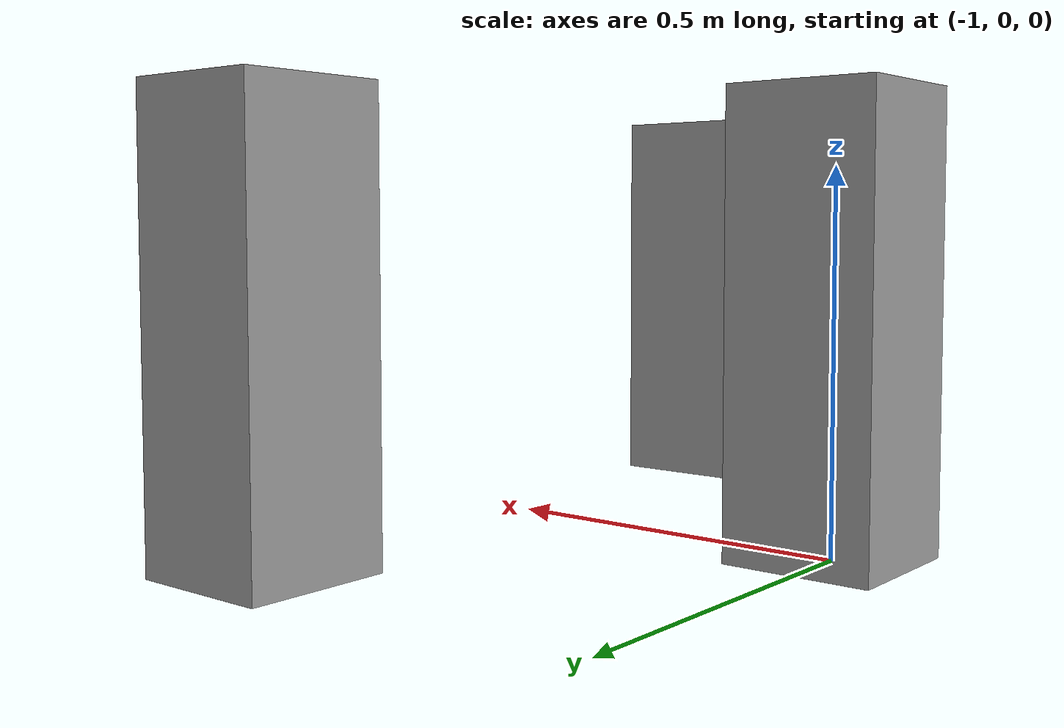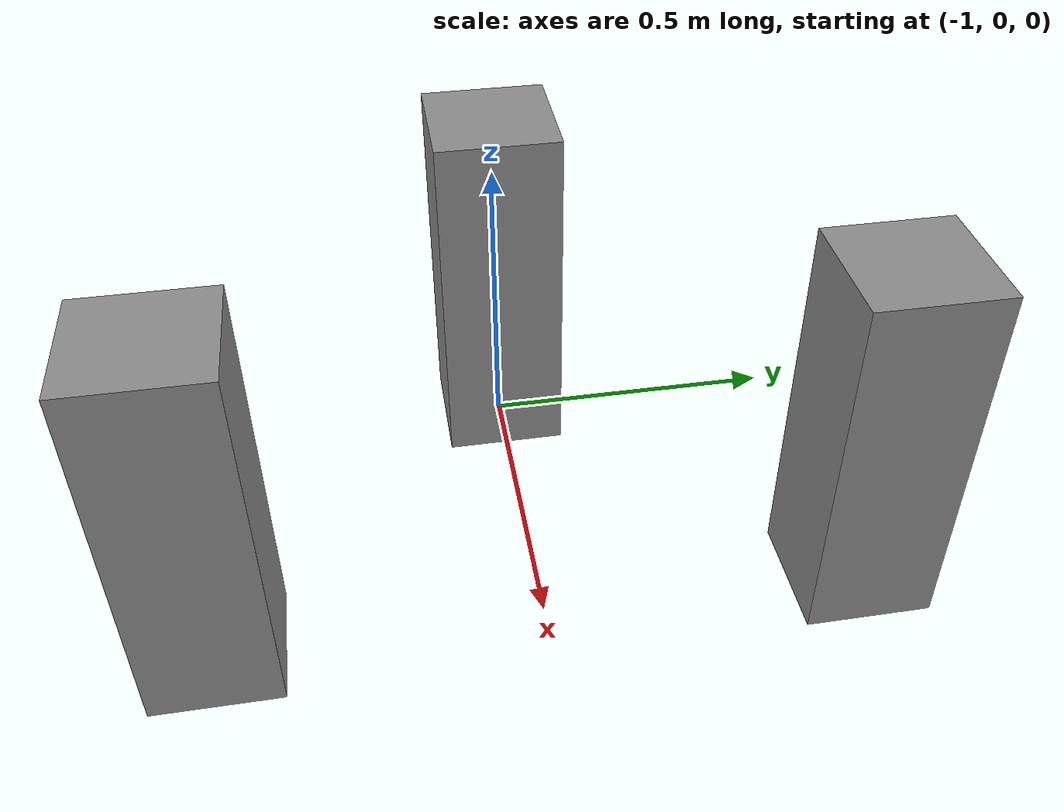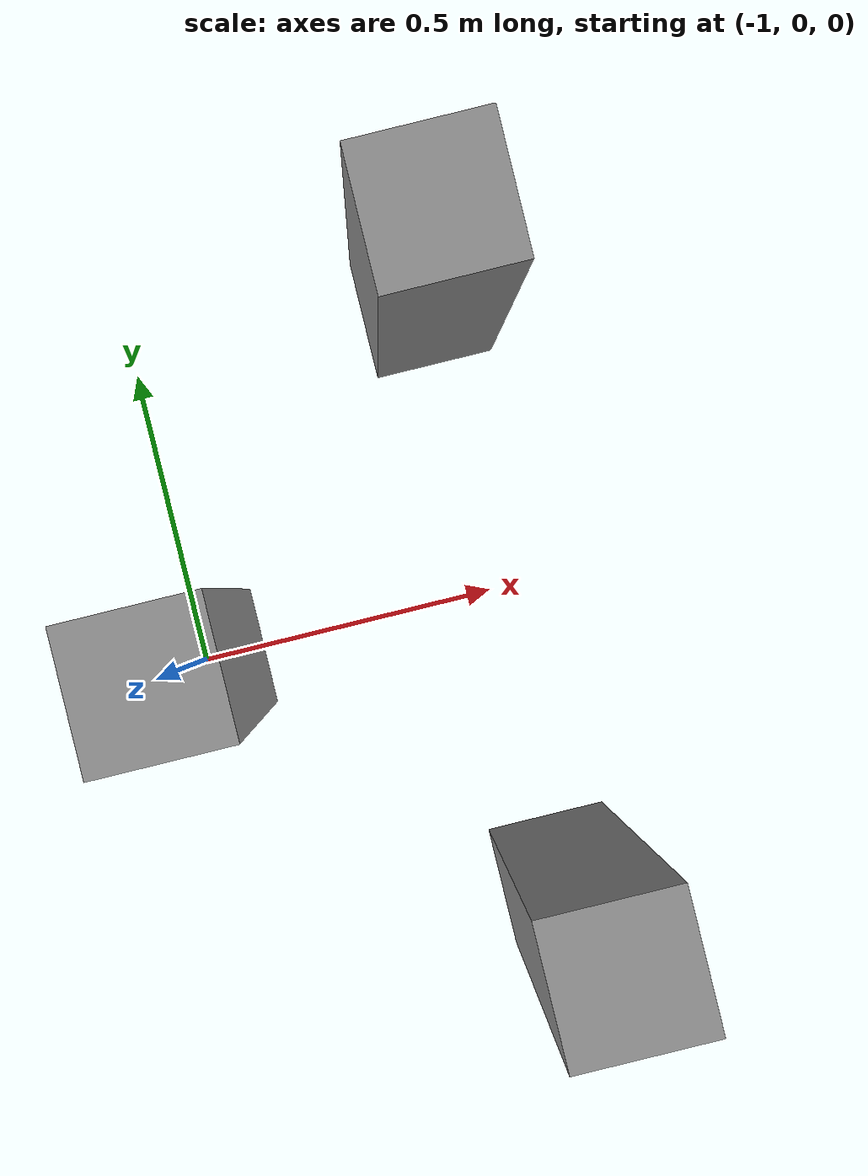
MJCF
<mujoco model="Packing Box">

  <worldbody>

    <body pos="-0.5 -0.5 0">
      <geom type="box" pos="0 0 0.3" size="0.1 0.1 0.3" mass="0.01" rgba="0.55 0.55 0.55 1" />
    </body>

    <body pos="-0.5 0.5 0">
      <geom type="box" pos="0 0 0.3" size="0.1 0.1 0.3" mass="0.01" rgba="0.55 0.55 0.55 1" />
    </body>

    <body pos="-1.0 0.0 0">
      <geom type="box" pos="0 0 0.3" size="0.1 0.1 0.3" mass="0.01" rgba="0.55 0.55 0.55 1" />
    </body>

  </worldbody>

</mujoco>
